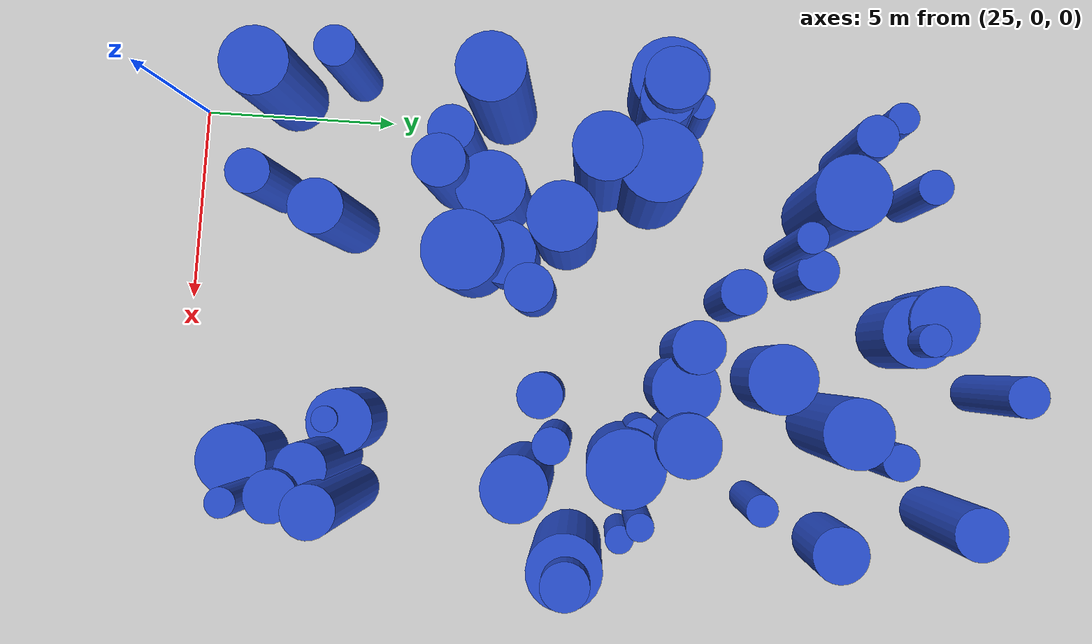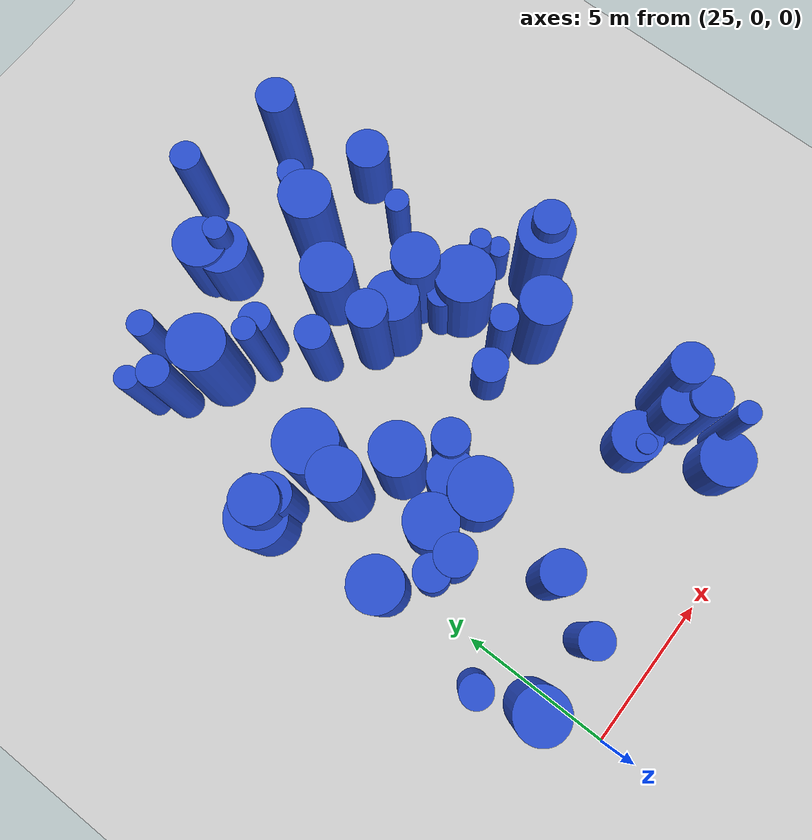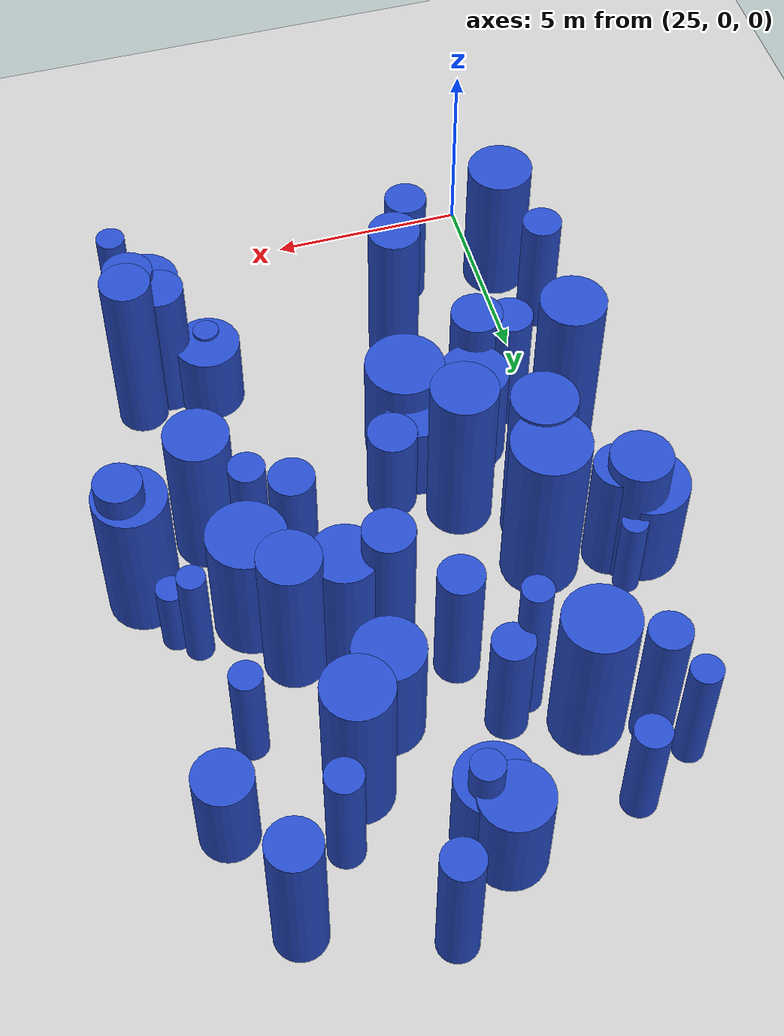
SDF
<sdf version="1.6">
 <world name="default">
  <model name="ground_plane">
   <static>1</static>
   <link name="link">
    <collision name="collision">
     <geometry><plane><normal>0 0 1</normal><size>100 100</size></plane></geometry>
     <surface><friction><ode><mu>100</mu><mu2>50</mu2></ode></friction></surface>
    </collision>
    <visual name="visual">
     <cast_shadows>0</cast_shadows>
     <geometry><plane><normal>0 0 1</normal><size>100 100</size></plane></geometry>
     <material>
      <script><uri>file://media/materials/scripts/gazebo.material</uri><name>Gazebo/Grey</name></script>
     </material>
    </visual>
   </link>
  </model>
  <model name="34">
   <static>0</static>
   <link name="link">
    <inertial>
     <mass>2</mass>
     <inertia><ixx>2.04762</ixx><ixy>0</ixy><ixz>0</ixz><iyy>2.04762</iyy><iyz>0</iyz><izz>0.252697</izz></inertia>
    </inertial>
    <collision name="collision">
     <geometry><cylinder><length>3.39524</length><radius>0.502689</radius></cylinder></geometry>
     <surface><contact><collide_without_contact>1</collide_without_contact></contact></surface>
    </collision>
    <visual name="visual">
     <geometry><cylinder><length>3.39524</length><radius>0.502689</radius></cylinder></geometry>
     <material>
      <script><uri>file://media/materials/scripts/gazebo.material</uri><name>Gazebo/Blue</name></script>
     </material>
    </visual>
    <gravity>0</gravity>
   </link>
   <pose>28.5365 15.9625 1.69762 0 -0 0</pose>
  </model>
  <model name="50">
   <static>0</static>
   <link name="link">
    <inertial>
     <mass>2</mass>
     <inertia><ixx>2.06213</ixx><ixy>0</ixy><ixz>0</ixz><iyy>2.06213</iyy><iyz>0</iyz><izz>0.143933</izz></inertia>
    </inertial>
    <collision name="collision">
     <geometry><cylinder><length>3.45558</length><radius>0.379384</radius></cylinder></geometry>
     <surface><contact><collide_without_contact>1</collide_without_contact></contact></surface>
    </collision>
    <visual name="visual">
     <geometry><cylinder><length>3.45558</length><radius>0.379384</radius></cylinder></geometry>
     <material>
      <script><uri>file://media/materials/scripts/gazebo.material</uri><name>Gazebo/Blue</name></script>
     </material>
    </visual>
    <gravity>0</gravity>
   </link>
   <pose>24.7799 17.7722 1.72779 0 -0 0</pose>
  </model>
  <model name="51">
   <static>0</static>
   <link name="link">
    <inertial>
     <mass>2</mass>
     <inertia><ixx>2.12546</ixx><ixy>0</ixy><ixz>0</ixz><iyy>2.12546</iyy><iyz>0</iyz><izz>0.256393</izz></inertia>
    </inertial>
    <collision name="collision">
     <geometry><cylinder><length>3.46173</length><radius>0.506353</radius></cylinder></geometry>
     <surface><contact><collide_without_contact>1</collide_without_contact></contact></surface>
    </collision>
    <visual name="visual">
     <geometry><cylinder><length>3.46173</length><radius>0.506353</radius></cylinder></geometry>
     <material>
      <script><uri>file://media/materials/scripts/gazebo.material</uri><name>Gazebo/Blue</name></script>
     </material>
    </visual>
    <gravity>0</gravity>
   </link>
   <pose>23.9364 4.12695 1.73086 0 -0 0</pose>
  </model>
  <model name="53">
   <static>0</static>
   <link name="link">
    <inertial>
     <mass>2</mass>
     <inertia><ixx>2.76585</ixx><ixy>0</ixy><ixz>0</ixz><iyy>2.76585</iyy><iyz>0</iyz><izz>0.237555</izz></inertia>
    </inertial>
    <collision name="collision">
     <geometry><cylinder><length>3.98528</length><radius>0.487396</radius></cylinder></geometry>
     <surface><contact><collide_without_contact>1</collide_without_contact></contact></surface>
    </collision>
    <visual name="visual">
     <geometry><cylinder><length>3.98528</length><radius>0.487396</radius></cylinder></geometry>
     <material>
      <script><uri>file://media/materials/scripts/gazebo.material</uri><name>Gazebo/Blue</name></script>
     </material>
    </visual>
    <gravity>0</gravity>
   </link>
   <pose>31.1916 20.8429 1.99264 0 -0 0</pose>
  </model>
  <model name="65">
   <static>0</static>
   <link name="link">
    <inertial>
     <mass>2</mass>
     <inertia><ixx>4.10178</ixx><ixy>0</ixy><ixz>0</ixz><iyy>4.10178</iyy><iyz>0</iyz><izz>0.667926</izz></inertia>
    </inertial>
    <collision name="collision">
     <geometry><cylinder><length>4.75467</length><radius>0.817267</radius></cylinder></geometry>
     <surface><contact><collide_without_contact>1</collide_without_contact></contact></surface>
    </collision>
    <visual name="visual">
     <geometry><cylinder><length>4.75467</length><radius>0.817267</radius></cylinder></geometry>
     <material>
      <script><uri>file://media/materials/scripts/gazebo.material</uri><name>Gazebo/Blue</name></script>
     </material>
    </visual>
    <gravity>0</gravity>
   </link>
   <pose>24.5379 8.02641 2.37734 0 -0 0</pose>
  </model>
  <model name="73">
   <static>0</static>
   <link name="link">
    <inertial>
     <mass>2</mass>
     <inertia><ixx>3.29793</ixx><ixy>0</ixy><ixz>0</ixz><iyy>3.29793</iyy><iyz>0</iyz><izz>0.382412</izz></inertia>
    </inertial>
    <collision name="collision">
     <geometry><cylinder><length>4.31745</length><radius>0.618395</radius></cylinder></geometry>
     <surface><contact><collide_without_contact>1</collide_without_contact></contact></surface>
    </collision>
    <visual name="visual">
     <geometry><cylinder><length>4.31745</length><radius>0.618395</radius></cylinder></geometry>
     <material>
      <script><uri>file://media/materials/scripts/gazebo.material</uri><name>Gazebo/Blue</name></script>
     </material>
    </visual>
    <gravity>0</gravity>
   </link>
   <pose>34.3582 19.7886 2.15872 0 -0 0</pose>
  </model>
  <model name="82">
   <static>0</static>
   <link name="link">
    <inertial>
     <mass>2</mass>
     <inertia><ixx>3.25795</ixx><ixy>0</ixy><ixz>0</ixz><iyy>3.25795</iyy><iyz>0</iyz><izz>0.785089</izz></inertia>
    </inertial>
    <collision name="collision">
     <geometry><cylinder><length>4.14638</length><radius>0.886053</radius></cylinder></geometry>
     <surface><contact><collide_without_contact>1</collide_without_contact></contact></surface>
    </collision>
    <visual name="visual">
     <geometry><cylinder><length>4.14638</length><radius>0.886053</radius></cylinder></geometry>
     <material>
      <script><uri>file://media/materials/scripts/gazebo.material</uri><name>Gazebo/Blue</name></script>
     </material>
    </visual>
    <gravity>0</gravity>
   </link>
   <pose>35.8503 10.436 2.07319 0 -0 0</pose>
  </model>
  <model name="119">
   <static>0</static>
   <link name="link">
    <inertial>
     <mass>2</mass>
     <inertia><ixx>2.67789</ixx><ixy>0</ixy><ixz>0</ixz><iyy>2.67789</iyy><iyz>0</iyz><izz>0.655818</izz></inertia>
    </inertial>
    <collision name="collision">
     <geometry><cylinder><length>3.75498</length><radius>0.809826</radius></cylinder></geometry>
     <surface><contact><collide_without_contact>1</collide_without_contact></contact></surface>
    </collision>
    <visual name="visual">
     <geometry><cylinder><length>3.75498</length><radius>0.809826</radius></cylinder></geometry>
     <material>
      <script><uri>file://media/materials/scripts/gazebo.material</uri><name>Gazebo/Blue</name></script>
     </material>
    </visual>
    <gravity>0</gravity>
   </link>
   <pose>31.524 12.9787 1.87749 0 -0 0</pose>
  </model>
  <model name="120">
   <static>0</static>
   <link name="link">
    <inertial>
     <mass>2</mass>
     <inertia><ixx>1.21863</ixx><ixy>0</ixy><ixz>0</ixz><iyy>1.21863</iyy><iyz>0</iyz><izz>0.648176</izz></inertia>
    </inertial>
    <collision name="collision">
     <geometry><cylinder><length>2.31674</length><radius>0.805094</radius></cylinder></geometry>
     <surface><contact><collide_without_contact>1</collide_without_contact></contact></surface>
    </collision>
    <visual name="visual">
     <geometry><cylinder><length>2.31674</length><radius>0.805094</radius></cylinder></geometry>
     <material>
      <script><uri>file://media/materials/scripts/gazebo.material</uri><name>Gazebo/Blue</name></script>
     </material>
    </visual>
    <gravity>0</gravity>
   </link>
   <pose>28.4753 8.40492 1.15837 0 -0 0</pose>
  </model>
  <model name="122">
   <static>0</static>
   <link name="link">
    <inertial>
     <mass>2</mass>
     <inertia><ixx>3.26531</ixx><ixy>0</ixy><ixz>0</ixz><iyy>3.26531</iyy><iyz>0</iyz><izz>0.4271</izz></inertia>
    </inertial>
    <collision name="collision">
     <geometry><cylinder><length>4.27909</length><radius>0.653529</radius></cylinder></geometry>
     <surface><contact><collide_without_contact>1</collide_without_contact></contact></surface>
    </collision>
    <visual name="visual">
     <geometry><cylinder><length>4.27909</length><radius>0.653529</radius></cylinder></geometry>
     <material>
      <script><uri>file://media/materials/scripts/gazebo.material</uri><name>Gazebo/Blue</name></script>
     </material>
    </visual>
    <gravity>0</gravity>
   </link>
   <pose>27.9079 4.18189 2.13954 0 -0 0</pose>
  </model>
  <model name="124">
   <static>0</static>
   <link name="link">
    <inertial>
     <mass>2</mass>
     <inertia><ixx>3.28363</ixx><ixy>0</ixy><ixz>0</ixz><iyy>3.28363</iyy><iyz>0</iyz><izz>0.618436</izz></inertia>
    </inertial>
    <collision name="collision">
     <geometry><cylinder><length>4.22451</length><radius>0.786407</radius></cylinder></geometry>
     <surface><contact><collide_without_contact>1</collide_without_contact></contact></surface>
    </collision>
    <visual name="visual">
     <geometry><cylinder><length>4.22451</length><radius>0.786407</radius></cylinder></geometry>
     <material>
      <script><uri>file://media/materials/scripts/gazebo.material</uri><name>Gazebo/Blue</name></script>
     </material>
    </visual>
    <gravity>0</gravity>
   </link>
   <pose>34.0434 9.17601 2.11225 0 -0 0</pose>
  </model>
  <model name="130">
   <static>0</static>
   <link name="link">
    <inertial>
     <mass>2</mass>
     <inertia><ixx>2.42182</ixx><ixy>0</ixy><ixz>0</ixz><iyy>2.42182</iyy><iyz>0</iyz><izz>0.418828</izz></inertia>
    </inertial>
    <collision name="collision">
     <geometry><cylinder><length>3.64341</length><radius>0.647169</radius></cylinder></geometry>
     <surface><contact><collide_without_contact>1</collide_without_contact></contact></surface>
    </collision>
    <visual name="visual">
     <geometry><cylinder><length>3.64341</length><radius>0.647169</radius></cylinder></geometry>
     <material>
      <script><uri>file://media/materials/scripts/gazebo.material</uri><name>Gazebo/Blue</name></script>
     </material>
    </visual>
    <gravity>0</gravity>
   </link>
   <pose>26.5421 6.83229 1.82171 0 -0 0</pose>
  </model>
  <model name="132">
   <static>0</static>
   <link name="link">
    <inertial>
     <mass>2</mass>
     <inertia><ixx>1.34527</ixx><ixy>0</ixy><ixz>0</ixz><iyy>1.34527</iyy><iyz>0</iyz><izz>0.376223</izz></inertia>
    </inertial>
    <collision name="collision">
     <geometry><cylinder><length>2.63495</length><radius>0.613371</radius></cylinder></geometry>
     <surface><contact><collide_without_contact>1</collide_without_contact></contact></surface>
    </collision>
    <visual name="visual">
     <geometry><cylinder><length>2.63495</length><radius>0.613371</radius></cylinder></geometry>
     <material>
      <script><uri>file://media/materials/scripts/gazebo.material</uri><name>Gazebo/Blue</name></script>
     </material>
    </visual>
    <gravity>0</gravity>
   </link>
   <pose>29.3354 9.09993 1.31747 0 -0 0</pose>
  </model>
  <model name="133">
   <static>0</static>
   <link name="link">
    <inertial>
     <mass>2</mass>
     <inertia><ixx>2.03008</ixx><ixy>0</ixy><ixz>0</ixz><iyy>2.03008</iyy><iyz>0</iyz><izz>0.9733</izz></inertia>
    </inertial>
    <collision name="collision">
     <geometry><cylinder><length>3.04312</length><radius>0.98656</radius></cylinder></geometry>
     <surface><contact><collide_without_contact>1</collide_without_contact></contact></surface>
    </collision>
    <visual name="visual">
     <geometry><cylinder><length>3.04312</length><radius>0.98656</radius></cylinder></geometry>
     <material>
      <script><uri>file://media/materials/scripts/gazebo.material</uri><name>Gazebo/Blue</name></script>
     </material>
    </visual>
    <gravity>0</gravity>
   </link>
   <pose>28.5566 7.43766 1.52156 0 -0 0</pose>
  </model>
  <model name="147">
   <static>0</static>
   <link name="link">
    <inertial>
     <mass>2</mass>
     <inertia>
      <ixx>0.824184</ixx>
      <ixy>0</ixy>
      <ixz>0</ixz>
      <iyy>0.824184</iyy>
      <iyz>0</iyz>
      <izz>0.109364</izz>
     </inertia>
    </inertial>
    <collision name="collision">
     <geometry><cylinder><length>2.14872</length><radius>0.330702</radius></cylinder></geometry>
     <surface><contact><collide_without_contact>1</collide_without_contact></contact></surface>
    </collision>
    <visual name="visual">
     <geometry><cylinder><length>2.14872</length><radius>0.330702</radius></cylinder></geometry>
     <material>
      <script><uri>file://media/materials/scripts/gazebo.material</uri><name>Gazebo/Blue</name></script>
     </material>
    </visual>
    <gravity>0</gravity>
   </link>
   <pose>32.8903 4.2564 1.07436 0 -0 0</pose>
  </model>
  <model name="149">
   <static>0</static>
   <link name="link">
    <inertial>
     <mass>2</mass>
     <inertia><ixx>2.1817</ixx><ixy>0</ixy><ixz>0</ixz><iyy>2.1817</iyy><iyz>0</iyz><izz>0.152978</izz></inertia>
    </inertial>
    <collision name="collision">
     <geometry><cylinder><length>3.55405</length><radius>0.391123</radius></cylinder></geometry>
     <surface><contact><collide_without_contact>1</collide_without_contact></contact></surface>
    </collision>
    <visual name="visual">
     <geometry><cylinder><length>3.55405</length><radius>0.391123</radius></cylinder></geometry>
     <material>
      <script><uri>file://media/materials/scripts/gazebo.material</uri><name>Gazebo/Blue</name></script>
     </material>
    </visual>
    <gravity>0</gravity>
   </link>
   <pose>30.0083 18.7554 1.77703 0 -0 0</pose>
  </model>
  <model name="163">
   <static>0</static>
   <link name="link">
    <inertial>
     <mass>2</mass>
     <inertia><ixx>3.981</ixx><ixy>0</ixy><ixz>0</ixz><iyy>3.981</iyy><iyz>0</iyz><izz>0.664565</izz></inertia>
    </inertial>
    <collision name="collision">
     <geometry><cylinder><length>4.67892</length><radius>0.815208</radius></cylinder></geometry>
     <surface><contact><collide_without_contact>1</collide_without_contact></contact></surface>
    </collision>
    <visual name="visual">
     <geometry><cylinder><length>4.67892</length><radius>0.815208</radius></cylinder></geometry>
     <material>
      <script><uri>file://media/materials/scripts/gazebo.material</uri><name>Gazebo/Blue</name></script>
     </material>
    </visual>
    <gravity>0</gravity>
   </link>
   <pose>27.8156 9.86092 2.33946 0 -0 0</pose>
  </model>
  <model name="165">
   <static>0</static>
   <link name="link">
    <inertial>
     <mass>2</mass>
     <inertia><ixx>2.28797</ixx><ixy>0</ixy><ixz>0</ixz><iyy>2.28797</iyy><iyz>0</iyz><izz>0.431575</izz></inertia>
    </inertial>
    <collision name="collision">
     <geometry><cylinder><length>3.52606</length><radius>0.656943</radius></cylinder></geometry>
     <surface><contact><collide_without_contact>1</collide_without_contact></contact></surface>
    </collision>
    <visual name="visual">
     <geometry><cylinder><length>3.52606</length><radius>0.656943</radius></cylinder></geometry>
     <material>
      <script><uri>file://media/materials/scripts/gazebo.material</uri><name>Gazebo/Blue</name></script>
     </material>
    </visual>
    <gravity>0</gravity>
   </link>
   <pose>24.6912 12.1351 1.76303 0 -0 0</pose>
  </model>
  <model name="172">
   <static>0</static>
   <link name="link">
    <inertial>
     <mass>2</mass>
     <inertia><ixx>1.41095</ixx><ixy>0</ixy><ixz>0</ixz><iyy>1.41095</iyy><iyz>0</iyz><izz>0.489135</izz></inertia>
    </inertial>
    <collision name="collision">
     <geometry><cylinder><length>2.64543</length><radius>0.699382</radius></cylinder></geometry>
     <surface><contact><collide_without_contact>1</collide_without_contact></contact></surface>
    </collision>
    <visual name="visual">
     <geometry><cylinder><length>2.64543</length><radius>0.699382</radius></cylinder></geometry>
     <material>
      <script><uri>file://media/materials/scripts/gazebo.material</uri><name>Gazebo/Blue</name></script>
     </material>
    </visual>
    <gravity>0</gravity>
   </link>
   <pose>35.2961 17.0627 1.32271 0 -0 0</pose>
  </model>
  <model name="180">
   <static>0</static>
   <link name="link">
    <inertial>
     <mass>2</mass>
     <inertia><ixx>2.26067</ixx><ixy>0</ixy><ixz>0</ixz><iyy>2.26067</iyy><iyz>0</iyz><izz>0.199813</izz></inertia>
    </inertial>
    <collision name="collision">
     <geometry><cylinder><length>3.60063</length><radius>0.447005</radius></cylinder></geometry>
     <surface><contact><collide_without_contact>1</collide_without_contact></contact></surface>
    </collision>
    <visual name="visual">
     <geometry><cylinder><length>3.60063</length><radius>0.447005</radius></cylinder></geometry>
     <material>
      <script><uri>file://media/materials/scripts/gazebo.material</uri><name>Gazebo/Blue</name></script>
     </material>
    </visual>
    <gravity>0</gravity>
   </link>
   <pose>33.0643 9.92457 1.80032 0 -0 0</pose>
  </model>
  <model name="187">
   <static>0</static>
   <link name="link">
    <inertial>
     <mass>2</mass>
     <inertia><ixx>1.08859</ixx><ixy>0</ixy><ixz>0</ixz><iyy>1.08859</iyy><iyz>0</iyz><izz>0.332545</izz></inertia>
    </inertial>
    <collision name="collision">
     <geometry><cylinder><length>2.35242</length><radius>0.576667</radius></cylinder></geometry>
     <surface><contact><collide_without_contact>1</collide_without_contact></contact></surface>
    </collision>
    <visual name="visual">
     <geometry><cylinder><length>2.35242</length><radius>0.576667</radius></cylinder></geometry>
     <material>
      <script><uri>file://media/materials/scripts/gazebo.material</uri><name>Gazebo/Blue</name></script>
     </material>
    </visual>
    <gravity>0</gravity>
   </link>
   <pose>31.9469 9.53714 1.17621 0 -0 0</pose>
  </model>
  <model name="188">
   <static>0</static>
   <link name="link">
    <inertial>
     <mass>2</mass>
     <inertia><ixx>2.92046</ixx><ixy>0</ixy><ixz>0</ixz><iyy>2.92046</iyy><iyz>0</iyz><izz>0.252098</izz></inertia>
    </inertial>
    <collision name="collision">
     <geometry><cylinder><length>4.09469</length><radius>0.502093</radius></cylinder></geometry>
     <surface><contact><collide_without_contact>1</collide_without_contact></contact></surface>
    </collision>
    <visual name="visual">
     <geometry><cylinder><length>4.09469</length><radius>0.502093</radius></cylinder></geometry>
     <material>
      <script><uri>file://media/materials/scripts/gazebo.material</uri><name>Gazebo/Blue</name></script>
     </material>
    </visual>
    <gravity>0</gravity>
   </link>
   <pose>25.3993 17.0112 2.04734 0 -0 0</pose>
  </model>
  <model name="192">
   <static>0</static>
   <link name="link">
    <inertial>
     <mass>2</mass>
     <inertia><ixx>3.57441</ixx><ixy>0</ixy><ixz>0</ixz><iyy>3.57441</iyy><iyz>0</iyz><izz>0.380893</izz></inertia>
    </inertial>
    <collision name="collision">
     <geometry><cylinder><length>4.50597</length><radius>0.617166</radius></cylinder></geometry>
     <surface><contact><collide_without_contact>1</collide_without_contact></contact></surface>
    </collision>
    <visual name="visual">
     <geometry><cylinder><length>4.50597</length><radius>0.617166</radius></cylinder></geometry>
     <material>
      <script><uri>file://media/materials/scripts/gazebo.material</uri><name>Gazebo/Blue</name></script>
     </material>
    </visual>
    <gravity>0</gravity>
   </link>
   <pose>30.5597 13.1513 2.25299 0 -0 0</pose>
  </model>
  <model name="195">
   <static>0</static>
   <link name="link">
    <inertial>
     <mass>2</mass>
     <inertia><ixx>3.58815</ixx><ixy>0</ixy><ixz>0</ixz><iyy>3.58815</iyy><iyz>0</iyz><izz>0.135348</izz></inertia>
    </inertial>
    <collision name="collision">
     <geometry><cylinder><length>4.59596</length><radius>0.367897</radius></cylinder></geometry>
     <surface><contact><collide_without_contact>1</collide_without_contact></contact></surface>
    </collision>
    <visual name="visual">
     <geometry><cylinder><length>4.59596</length><radius>0.367897</radius></cylinder></geometry>
     <material>
      <script><uri>file://media/materials/scripts/gazebo.material</uri><name>Gazebo/Blue</name></script>
     </material>
    </visual>
    <gravity>0</gravity>
   </link>
   <pose>27.9233 15.5456 2.29798 0 -0 0</pose>
  </model>
  <model name="223">
   <static>0</static>
   <link name="link">
    <inertial>
     <mass>2</mass>
     <inertia><ixx>0.79333</ixx><ixy>0</ixy><ixz>0</ixz><iyy>0.79333</iyy><iyz>0</iyz><izz>0.125248</izz></inertia>
    </inertial>
    <collision name="collision">
     <geometry><cylinder><length>2.09386</length><radius>0.353905</radius></cylinder></geometry>
     <surface><contact><collide_without_contact>1</collide_without_contact></contact></surface>
    </collision>
    <visual name="visual">
     <geometry><cylinder><length>2.09386</length><radius>0.353905</radius></cylinder></geometry>
     <material>
      <script><uri>file://media/materials/scripts/gazebo.material</uri><name>Gazebo/Blue</name></script>
     </material>
    </visual>
    <gravity>0</gravity>
   </link>
   <pose>35.3536 11.7215 1.04693 0 -0 0</pose>
  </model>
  <model name="233">
   <static>0</static>
   <link name="link">
    <inertial>
     <mass>2</mass>
     <inertia>
      <ixx>2.99615</ixx>
      <ixy>0</ixy>
      <ixz>0</ixz>
      <iyy>2.99615</iyy>
      <iyz>0</iyz>
      <izz>0.0662204</izz>
     </inertia>
    </inertial>
    <collision name="collision">
     <geometry><cylinder><length>4.21642</length><radius>0.257333</radius></cylinder></geometry>
     <surface><contact><collide_without_contact>1</collide_without_contact></contact></surface>
    </collision>
    <visual name="visual">
     <geometry><cylinder><length>4.21642</length><radius>0.257333</radius></cylinder></geometry>
     <material>
      <script><uri>file://media/materials/scripts/gazebo.material</uri><name>Gazebo/Blue</name></script>
     </material>
    </visual>
    <gravity>0</gravity>
   </link>
   <pose>30.4978 13.0604 2.10821 0 -0 0</pose>
  </model>
  <model name="257">
   <static>0</static>
   <link name="link">
    <inertial>
     <mass>2</mass>
     <inertia><ixx>1.73149</ixx><ixy>0</ixy><ixz>0</ixz><iyy>1.73149</iyy><iyz>0</iyz><izz>0.183637</izz></inertia>
    </inertial>
    <collision name="collision">
     <geometry><cylinder><length>3.13656</length><radius>0.428529</radius></cylinder></geometry>
     <surface><contact><collide_without_contact>1</collide_without_contact></contact></surface>
    </collision>
    <visual name="visual">
     <geometry><cylinder><length>3.13656</length><radius>0.428529</radius></cylinder></geometry>
     <material>
      <script><uri>file://media/materials/scripts/gazebo.material</uri><name>Gazebo/Blue</name></script>
     </material>
    </visual>
    <gravity>0</gravity>
   </link>
   <pose>26.3208 18.7257 1.56828 0 -0 0</pose>
  </model>
  <model name="270">
   <static>0</static>
   <link name="link">
    <inertial>
     <mass>2</mass>
     <inertia><ixx>2.89658</ixx><ixy>0</ixy><ixz>0</ixz><iyy>2.89658</iyy><iyz>0</iyz><izz>0.695358</izz></inertia>
    </inertial>
    <collision name="collision">
     <geometry><cylinder><length>3.91068</length><radius>0.833881</radius></cylinder></geometry>
     <surface><contact><collide_without_contact>1</collide_without_contact></contact></surface>
    </collision>
    <visual name="visual">
     <geometry><cylinder><length>3.91068</length><radius>0.833881</radius></cylinder></geometry>
     <material>
      <script><uri>file://media/materials/scripts/gazebo.material</uri><name>Gazebo/Blue</name></script>
     </material>
    </visual>
    <gravity>0</gravity>
   </link>
   <pose>24.5352 2.37473 1.95534 0 -0 0</pose>
  </model>
  <model name="272">
   <static>0</static>
   <link name="link">
    <inertial>
     <mass>2</mass>
     <inertia><ixx>3.55205</ixx><ixy>0</ixy><ixz>0</ixz><iyy>3.55205</iyy><iyz>0</iyz><izz>0.797344</izz></inertia>
    </inertial>
    <collision name="collision">
     <geometry><cylinder><length>4.34975</length><radius>0.892941</radius></cylinder></geometry>
     <surface><contact><collide_without_contact>1</collide_without_contact></contact></surface>
    </collision>
    <visual name="visual">
     <geometry><cylinder><length>4.34975</length><radius>0.892941</radius></cylinder></geometry>
     <material>
      <script><uri>file://media/materials/scripts/gazebo.material</uri><name>Gazebo/Blue</name></script>
     </material>
    </visual>
    <gravity>0</gravity>
   </link>
   <pose>26.7877 16.4771 2.17487 0 -0 0</pose>
  </model>
  <model name="273">
   <static>0</static>
   <link name="link">
    <inertial>
     <mass>2</mass>
     <inertia><ixx>1.79035</ixx><ixy>0</ixy><ixz>0</ixz><iyy>1.79035</iyy><iyz>0</iyz><izz>0.746025</izz></inertia>
    </inertial>
    <collision name="collision">
     <geometry><cylinder><length>2.91617</length><radius>0.863727</radius></cylinder></geometry>
     <surface><contact><collide_without_contact>1</collide_without_contact></contact></surface>
    </collision>
    <visual name="visual">
     <geometry><cylinder><length>2.91617</length><radius>0.863727</radius></cylinder></geometry>
     <material>
      <script><uri>file://media/materials/scripts/gazebo.material</uri><name>Gazebo/Blue</name></script>
     </material>
    </visual>
    <gravity>0</gravity>
   </link>
   <pose>26.9452 8.01745 1.45808 0 -0 0</pose>
  </model>
  <model name="276">
   <static>0</static>
   <link name="link">
    <inertial>
     <mass>2</mass>
     <inertia><ixx>3.96467</ixx><ixy>0</ixy><ixz>0</ixz><iyy>3.96467</iyy><iyz>0</iyz><izz>0.320346</izz></inertia>
    </inertial>
    <collision name="collision">
     <geometry><cylinder><length>4.77776</length><radius>0.565991</radius></cylinder></geometry>
     <surface><contact><collide_without_contact>1</collide_without_contact></contact></surface>
    </collision>
    <visual name="visual">
     <geometry><cylinder><length>4.77776</length><radius>0.565991</radius></cylinder></geometry>
     <material>
      <script><uri>file://media/materials/scripts/gazebo.material</uri><name>Gazebo/Blue</name></script>
     </material>
    </visual>
    <gravity>0</gravity>
   </link>
   <pose>36.0499 10.4808 2.38888 0 -0 0</pose>
  </model>
  <model name="293">
   <static>0</static>
   <link name="link">
    <inertial>
     <mass>2</mass>
     <inertia><ixx>3.30192</ixx><ixy>0</ixy><ixz>0</ixz><iyy>3.30192</iyy><iyz>0</iyz><izz>0.565741</izz></inertia>
    </inertial>
    <collision name="collision">
     <geometry><cylinder><length>4.25609</length><radius>0.752157</radius></cylinder></geometry>
     <surface><contact><collide_without_contact>1</collide_without_contact></contact></surface>
    </collision>
    <visual name="visual">
     <geometry><cylinder><length>4.25609</length><radius>0.752157</radius></cylinder></geometry>
     <material>
      <script><uri>file://media/materials/scripts/gazebo.material</uri><name>Gazebo/Blue</name></script>
     </material>
    </visual>
    <gravity>0</gravity>
   </link>
   <pose>32.809 13.089 2.12804 0 -0 0</pose>
  </model>
  <model name="296">
   <static>0</static>
   <link name="link">
    <inertial>
     <mass>2</mass>
     <inertia><ixx>4.26118</ixx><ixy>0</ixy><ixz>0</ixz><iyy>4.26118</iyy><iyz>0</iyz><izz>0.636812</izz></inertia>
    </inertial>
    <collision name="collision">
     <geometry><cylinder><length>4.86381</length><radius>0.798005</radius></cylinder></geometry>
     <surface><contact><collide_without_contact>1</collide_without_contact></contact></surface>
    </collision>
    <visual name="visual">
     <geometry><cylinder><length>4.86381</length><radius>0.798005</radius></cylinder></geometry>
     <material>
      <script><uri>file://media/materials/scripts/gazebo.material</uri><name>Gazebo/Blue</name></script>
     </material>
    </visual>
    <gravity>0</gravity>
   </link>
   <pose>26.1952 10.7788 2.43191 0 -0 0</pose>
  </model>
  <model name="298">
   <static>0</static>
   <link name="link">
    <inertial>
     <mass>2</mass>
     <inertia><ixx>4.27276</ixx><ixy>0</ixy><ixz>0</ixz><iyy>4.27276</iyy><iyz>0</iyz><izz>0.912614</izz></inertia>
    </inertial>
    <collision name="collision">
     <geometry><cylinder><length>4.78526</length><radius>0.955308</radius></cylinder></geometry>
     <surface><contact><collide_without_contact>1</collide_without_contact></contact></surface>
    </collision>
    <visual name="visual">
     <geometry><cylinder><length>4.78526</length><radius>0.955308</radius></cylinder></geometry>
     <material>
      <script><uri>file://media/materials/scripts/gazebo.material</uri><name>Gazebo/Blue</name></script>
     </material>
    </visual>
    <gravity>0</gravity>
   </link>
   <pose>26.4308 11.9914 2.39263 0 -0 0</pose>
  </model>
  <model name="331">
   <static>0</static>
   <link name="link">
    <inertial>
     <mass>2</mass>
     <inertia><ixx>1.00151</ixx><ixy>0</ixy><ixz>0</ixz><iyy>1.00151</iyy><iyz>0</iyz><izz>0.165224</izz></inertia>
    </inertial>
    <collision name="collision">
     <geometry><cylinder><length>2.34806</length><radius>0.406478</radius></cylinder></geometry>
     <surface><contact><collide_without_contact>1</collide_without_contact></contact></surface>
    </collision>
    <visual name="visual">
     <geometry><cylinder><length>2.34806</length><radius>0.406478</radius></cylinder></geometry>
     <material>
      <script><uri>file://media/materials/scripts/gazebo.material</uri><name>Gazebo/Blue</name></script>
     </material>
    </visual>
    <gravity>0</gravity>
   </link>
   <pose>32.475 16.5359 1.17403 0 -0 0</pose>
  </model>
  <model name="345">
   <static>0</static>
   <link name="link">
    <inertial>
     <mass>2</mass>
     <inertia><ixx>1.10501</ixx><ixy>0</ixy><ixz>0</ixz><iyy>1.10501</iyy><iyz>0</iyz><izz>0.790472</izz></inertia>
    </inertial>
    <collision name="collision">
     <geometry><cylinder><length>2.06364</length><radius>0.889085</radius></cylinder></geometry>
     <surface><contact><collide_without_contact>1</collide_without_contact></contact></surface>
    </collision>
    <visual name="visual">
     <geometry><cylinder><length>2.06364</length><radius>0.889085</radius></cylinder></geometry>
     <material>
      <script><uri>file://media/materials/scripts/gazebo.material</uri><name>Gazebo/Blue</name></script>
     </material>
    </visual>
    <gravity>0</gravity>
   </link>
   <pose>34.0422 2.0066 1.03182 0 -0 0</pose>
  </model>
  <model name="349">
   <static>0</static>
   <link name="link">
    <inertial>
     <mass>2</mass>
     <inertia><ixx>4.25693</ixx><ixy>0</ixy><ixz>0</ixz><iyy>4.25693</iyy><iyz>0</iyz><izz>0.39173</izz></inertia>
    </inertial>
    <collision name="collision">
     <geometry><cylinder><length>4.93623</length><radius>0.625883</radius></cylinder></geometry>
     <surface><contact><collide_without_contact>1</collide_without_contact></contact></surface>
    </collision>
    <visual name="visual">
     <geometry><cylinder><length>4.93623</length><radius>0.625883</radius></cylinder></geometry>
     <material>
      <script><uri>file://media/materials/scripts/gazebo.material</uri><name>Gazebo/Blue</name></script>
     </material>
    </visual>
    <gravity>0</gravity>
   </link>
   <pose>34.7694 4.71738 2.46811 0 -0 0</pose>
  </model>
  <model name="353">
   <static>0</static>
   <link name="link">
    <inertial>
     <mass>2</mass>
     <inertia><ixx>2.02847</ixx><ixy>0</ixy><ixz>0</ixz><iyy>2.02847</iyy><iyz>0</iyz><izz>0.29673</izz></inertia>
    </inertial>
    <collision name="collision">
     <geometry><cylinder><length>3.35867</length><radius>0.54473</radius></cylinder></geometry>
     <surface><contact><collide_without_contact>1</collide_without_contact></contact></surface>
    </collision>
    <visual name="visual">
     <geometry><cylinder><length>3.35867</length><radius>0.54473</radius></cylinder></geometry>
     <material>
      <script><uri>file://media/materials/scripts/gazebo.material</uri><name>Gazebo/Blue</name></script>
     </material>
    </visual>
    <gravity>0</gravity>
   </link>
   <pose>27.0564 2.25899 1.67933 0 -0 0</pose>
  </model>
  <model name="364">
   <static>0</static>
   <link name="link">
    <inertial>
     <mass>2</mass>
     <inertia><ixx>2.52372</ixx><ixy>0</ixy><ixz>0</ixz><iyy>2.52372</iyy><iyz>0</iyz><izz>0.905317</izz></inertia>
    </inertial>
    <collision name="collision">
     <geometry><cylinder><length>3.5251</length><radius>0.951481</radius></cylinder></geometry>
     <surface><contact><collide_without_contact>1</collide_without_contact></contact></surface>
    </collision>
    <visual name="visual">
     <geometry><cylinder><length>3.5251</length><radius>0.951481</radius></cylinder></geometry>
     <material>
      <script><uri>file://media/materials/scripts/gazebo.material</uri><name>Gazebo/Blue</name></script>
     </material>
    </visual>
    <gravity>0</gravity>
   </link>
   <pose>33.492 11.7256 1.76255 0 -0 0</pose>
  </model>
  <model name="370">
   <static>0</static>
   <link name="link">
    <inertial>
     <mass>2</mass>
     <inertia><ixx>1.71451</ixx><ixy>0</ixy><ixz>0</ixz><iyy>1.71451</iyy><iyz>0</iyz><izz>0.954637</izz></inertia>
    </inertial>
    <collision name="collision">
     <geometry><cylinder><length>2.72454</length><radius>0.977055</radius></cylinder></geometry>
     <surface><contact><collide_without_contact>1</collide_without_contact></contact></surface>
    </collision>
    <visual name="visual">
     <geometry><cylinder><length>2.72454</length><radius>0.977055</radius></cylinder></geometry>
     <material>
      <script><uri>file://media/materials/scripts/gazebo.material</uri><name>Gazebo/Blue</name></script>
     </material>
    </visual>
    <gravity>0</gravity>
   </link>
   <pose>23.9274 12.2198 1.36227 0 -0 0</pose>
  </model>
  <model name="389">
   <static>0</static>
   <link name="link">
    <inertial>
     <mass>2</mass>
     <inertia><ixx>2.31007</ixx><ixy>0</ixy><ixz>0</ixz><iyy>2.31007</iyy><iyz>0</iyz><izz>0.321811</izz></inertia>
    </inertial>
    <collision name="collision">
     <geometry><cylinder><length>3.59096</length><radius>0.567284</radius></cylinder></geometry>
     <surface><contact><collide_without_contact>1</collide_without_contact></contact></surface>
    </collision>
    <visual name="visual">
     <geometry><cylinder><length>3.59096</length><radius>0.567284</radius></cylinder></geometry>
     <material>
      <script><uri>file://media/materials/scripts/gazebo.material</uri><name>Gazebo/Blue</name></script>
     </material>
    </visual>
    <gravity>0</gravity>
   </link>
   <pose>25.7523 7.06469 1.79548 0 -0 0</pose>
  </model>
  <model name="397">
   <static>0</static>
   <link name="link">
    <inertial>
     <mass>2</mass>
     <inertia><ixx>1.6644</ixx><ixy>0</ixy><ixz>0</ixz><iyy>1.6644</iyy><iyz>0</iyz><izz>0.735596</izz></inertia>
    </inertial>
    <collision name="collision">
     <geometry><cylinder><length>2.7892</length><radius>0.857669</radius></cylinder></geometry>
     <surface><contact><collide_without_contact>1</collide_without_contact></contact></surface>
    </collision>
    <visual name="visual">
     <geometry><cylinder><length>2.7892</length><radius>0.857669</radius></cylinder></geometry>
     <material>
      <script><uri>file://media/materials/scripts/gazebo.material</uri><name>Gazebo/Blue</name></script>
     </material>
    </visual>
    <gravity>0</gravity>
   </link>
   <pose>29.4919 19.2151 1.3946 0 -0 0</pose>
  </model>
  <model name="401">
   <static>0</static>
   <link name="link">
    <inertial>
     <mass>2</mass>
     <inertia><ixx>1.64059</ixx><ixy>0</ixy><ixz>0</ixz><iyy>1.64059</iyy><iyz>0</iyz><izz>0.15146</izz></inertia>
    </inertial>
    <collision name="collision">
     <geometry><cylinder><length>3.06417</length><radius>0.389179</radius></cylinder></geometry>
     <surface><contact><collide_without_contact>1</collide_without_contact></contact></surface>
    </collision>
    <visual name="visual">
     <geometry><cylinder><length>3.06417</length><radius>0.389179</radius></cylinder></geometry>
     <material>
      <script><uri>file://media/materials/scripts/gazebo.material</uri><name>Gazebo/Blue</name></script>
     </material>
    </visual>
    <gravity>0</gravity>
   </link>
   <pose>34.2985 15.0276 1.53209 0 -0 0</pose>
  </model>
  <model name="407">
   <static>0</static>
   <link name="link">
    <inertial>
     <mass>2</mass>
     <inertia><ixx>1.54882</ixx><ixy>0</ixy><ixz>0</ixz><iyy>1.54882</iyy><iyz>0</iyz><izz>0.117295</izz></inertia>
    </inertial>
    <collision name="collision">
     <geometry><cylinder><length>2.99016</length><radius>0.342484</radius></cylinder></geometry>
     <surface><contact><collide_without_contact>1</collide_without_contact></contact></surface>
    </collision>
    <visual name="visual">
     <geometry><cylinder><length>2.99016</length><radius>0.342484</radius></cylinder></geometry>
     <material>
      <script><uri>file://media/materials/scripts/gazebo.material</uri><name>Gazebo/Blue</name></script>
     </material>
    </visual>
    <gravity>0</gravity>
   </link>
   <pose>34.8945 12.1573 1.49508 0 -0 0</pose>
  </model>
  <model name="411">
   <static>0</static>
   <link name="link">
    <inertial>
     <mass>2</mass>
     <inertia><ixx>2.82881</ixx><ixy>0</ixy><ixz>0</ixz><iyy>2.82881</iyy><iyz>0</iyz><izz>0.381334</izz></inertia>
    </inertial>
    <collision name="collision">
     <geometry><cylinder><length>3.97855</length><radius>0.617522</radius></cylinder></geometry>
     <surface><contact><collide_without_contact>1</collide_without_contact></contact></surface>
    </collision>
    <visual name="visual">
     <geometry><cylinder><length>3.97855</length><radius>0.617522</radius></cylinder></geometry>
     <material>
      <script><uri>file://media/materials/scripts/gazebo.material</uri><name>Gazebo/Blue</name></script>
     </material>
    </visual>
    <gravity>0</gravity>
   </link>
   <pose>33.9388 4.23149 1.98928 0 -0 0</pose>
  </model>
  <model name="428">
   <static>0</static>
   <link name="link">
    <inertial>
     <mass>2</mass>
     <inertia><ixx>3.14165</ixx><ixy>0</ixy><ixz>0</ixz><iyy>3.14165</iyy><iyz>0</iyz><izz>0.127579</izz></inertia>
    </inertial>
    <collision name="collision">
     <geometry><cylinder><length>4.29734</length><radius>0.357182</radius></cylinder></geometry>
     <surface><contact><collide_without_contact>1</collide_without_contact></contact></surface>
    </collision>
    <visual name="visual">
     <geometry><cylinder><length>4.29734</length><radius>0.357182</radius></cylinder></geometry>
     <material>
      <script><uri>file://media/materials/scripts/gazebo.material</uri><name>Gazebo/Blue</name></script>
     </material>
    </visual>
    <gravity>0</gravity>
   </link>
   <pose>34.7842 2.56307 2.14867 0 -0 0</pose>
  </model>
  <model name="439">
   <static>0</static>
   <link name="link">
    <inertial>
     <mass>2</mass>
     <inertia><ixx>2.44907</ixx><ixy>0</ixy><ixz>0</ixz><iyy>2.44907</iyy><iyz>0</iyz><izz>0.301795</izz></inertia>
    </inertial>
    <collision name="collision">
     <geometry><cylinder><length>3.71336</length><radius>0.549359</radius></cylinder></geometry>
     <surface><contact><collide_without_contact>1</collide_without_contact></contact></surface>
    </collision>
    <visual name="visual">
     <geometry><cylinder><length>3.71336</length><radius>0.549359</radius></cylinder></geometry>
     <material>
      <script><uri>file://media/materials/scripts/gazebo.material</uri><name>Gazebo/Blue</name></script>
     </material>
    </visual>
    <gravity>0</gravity>
   </link>
   <pose>29.1893 14.1878 1.85668 0 -0 0</pose>
  </model>
  <model name="442">
   <static>0</static>
   <link name="link">
    <inertial>
     <mass>2</mass>
     <inertia><ixx>2.08684</ixx><ixy>0</ixy><ixz>0</ixz><iyy>2.08684</iyy><iyz>0</iyz><izz>0.191771</izz></inertia>
    </inertial>
    <collision name="collision">
     <geometry><cylinder><length>3.45626</length><radius>0.437916</radius></cylinder></geometry>
     <surface><contact><collide_without_contact>1</collide_without_contact></contact></surface>
    </collision>
    <visual name="visual">
     <geometry><cylinder><length>3.45626</length><radius>0.437916</radius></cylinder></geometry>
     <material>
      <script><uri>file://media/materials/scripts/gazebo.material</uri><name>Gazebo/Blue</name></script>
     </material>
    </visual>
    <gravity>0</gravity>
   </link>
   <pose>32.9176 18.1507 1.72813 0 -0 0</pose>
  </model>
  <model name="450">
   <static>0</static>
   <link name="link">
    <inertial>
     <mass>2</mass>
     <inertia><ixx>2.11546</ixx><ixy>0</ixy><ixz>0</ixz><iyy>2.11546</iyy><iyz>0</iyz><izz>0.72246</izz></inertia>
    </inertial>
    <collision name="collision">
     <geometry><cylinder><length>3.24428</length><radius>0.849976</radius></cylinder></geometry>
     <surface><contact><collide_without_contact>1</collide_without_contact></contact></surface>
    </collision>
    <visual name="visual">
     <geometry><cylinder><length>3.24428</length><radius>0.849976</radius></cylinder></geometry>
     <material>
      <script><uri>file://media/materials/scripts/gazebo.material</uri><name>Gazebo/Blue</name></script>
     </material>
    </visual>
    <gravity>0</gravity>
   </link>
   <pose>31.1616 15.3175 1.62214 0 -0 0</pose>
  </model>
  <model name="453">
   <static>0</static>
   <link name="link">
    <inertial>
     <mass>2</mass>
     <inertia><ixx>3.82183</ixx><ixy>0</ixy><ixz>0</ixz><iyy>3.82183</iyy><iyz>0</iyz><izz>0.668297</izz></inertia>
    </inertial>
    <collision name="collision">
     <geometry><cylinder><length>4.57451</length><radius>0.817494</radius></cylinder></geometry>
     <surface><contact><collide_without_contact>1</collide_without_contact></contact></surface>
    </collision>
    <visual name="visual">
     <geometry><cylinder><length>4.57451</length><radius>0.817494</radius></cylinder></geometry>
     <material>
      <script><uri>file://media/materials/scripts/gazebo.material</uri><name>Gazebo/Blue</name></script>
     </material>
    </visual>
    <gravity>0</gravity>
   </link>
   <pose>32.264 16.8386 2.28725 0 -0 0</pose>
  </model>
  <model name="472">
   <static>0</static>
   <link name="link">
    <inertial>
     <mass>2</mass>
     <inertia><ixx>2.84847</ixx><ixy>0</ixy><ixz>0</ixz><iyy>2.84847</iyy><iyz>0</iyz><izz>0.567953</izz></inertia>
    </inertial>
    <collision name="collision">
     <geometry><cylinder><length>3.92262</length><radius>0.753626</radius></cylinder></geometry>
     <surface><contact><collide_without_contact>1</collide_without_contact></contact></surface>
    </collision>
    <visual name="visual">
     <geometry><cylinder><length>3.92262</length><radius>0.753626</radius></cylinder></geometry>
     <material>
      <script><uri>file://media/materials/scripts/gazebo.material</uri><name>Gazebo/Blue</name></script>
     </material>
    </visual>
    <gravity>0</gravity>
   </link>
   <pose>24.2896 12.2953 1.96131 0 -0 0</pose>
  </model>
  <model name="477">
   <static>0</static>
   <link name="link">
    <inertial>
     <mass>2</mass>
     <inertia><ixx>1.05709</ixx><ixy>0</ixy><ixz>0</ixz><iyy>1.05709</iyy><iyz>0</iyz><izz>0.68516</izz></inertia>
    </inertial>
    <collision name="collision">
     <geometry><cylinder><length>2.07053</length><radius>0.827744</radius></cylinder></geometry>
     <surface><contact><collide_without_contact>1</collide_without_contact></contact></surface>
    </collision>
    <visual name="visual">
     <geometry><cylinder><length>2.07053</length><radius>0.827744</radius></cylinder></geometry>
     <material>
      <script><uri>file://media/materials/scripts/gazebo.material</uri><name>Gazebo/Blue</name></script>
     </material>
    </visual>
    <gravity>0</gravity>
   </link>
   <pose>32.9362 4.60555 1.03526 0 -0 0</pose>
  </model>
  <model name="481">
   <static>0</static>
   <link name="link">
    <inertial>
     <mass>2</mass>
     <inertia><ixx>3.1262</ixx><ixy>0</ixy><ixz>0</ixz><iyy>3.1262</iyy><iyz>0</iyz><izz>0.388635</izz></inertia>
    </inertial>
    <collision name="collision">
     <geometry><cylinder><length>4.1942</length><radius>0.623406</radius></cylinder></geometry>
     <surface><contact><collide_without_contact>1</collide_without_contact></contact></surface>
    </collision>
    <visual name="visual">
     <geometry><cylinder><length>4.1942</length><radius>0.623406</radius></cylinder></geometry>
     <material>
      <script><uri>file://media/materials/scripts/gazebo.material</uri><name>Gazebo/Blue</name></script>
     </material>
    </visual>
    <gravity>0</gravity>
   </link>
   <pose>34.5824 3.65069 2.0971 0 -0 0</pose>
  </model>
  <model name="485">
   <static>0</static>
   <link name="link">
    <inertial>
     <mass>2</mass>
     <inertia><ixx>1.57846</ixx><ixy>0</ixy><ixz>0</ixz><iyy>1.57846</iyy><iyz>0</iyz><izz>0.802135</izz></inertia>
    </inertial>
    <collision name="collision">
     <geometry><cylinder><length>2.65788</length><radius>0.89562</radius></cylinder></geometry>
     <surface><contact><collide_without_contact>1</collide_without_contact></contact></surface>
    </collision>
    <visual name="visual">
     <geometry><cylinder><length>2.65788</length><radius>0.89562</radius></cylinder></geometry>
     <material>
      <script><uri>file://media/materials/scripts/gazebo.material</uri><name>Gazebo/Blue</name></script>
     </material>
    </visual>
    <gravity>0</gravity>
   </link>
   <pose>29.7889 18.6427 1.32894 0 -0 0</pose>
  </model>
  <model name="495">
   <static>0</static>
   <link name="link">
    <inertial>
     <mass>2</mass>
     <inertia><ixx>1.06232</ixx><ixy>0</ixy><ixz>0</ixz><iyy>1.06232</iyy><iyz>0</iyz><izz>0.102042</izz></inertia>
    </inertial>
    <collision name="collision">
     <geometry><cylinder><length>2.46329</length><radius>0.319441</radius></cylinder></geometry>
     <surface><contact><collide_without_contact>1</collide_without_contact></contact></surface>
    </collision>
    <visual name="visual">
     <geometry><cylinder><length>2.46329</length><radius>0.319441</radius></cylinder></geometry>
     <material>
      <script><uri>file://media/materials/scripts/gazebo.material</uri><name>Gazebo/Blue</name></script>
     </material>
    </visual>
    <gravity>0</gravity>
   </link>
   <pose>24.573 13.0601 1.23165 0 -0 0</pose>
  </model>
  <model name="498">
   <static>0</static>
   <link name="link">
    <inertial>
     <mass>2</mass>
     <inertia><ixx>1.45385</ixx><ixy>0</ixy><ixz>0</ixz><iyy>1.45385</iyy><iyz>0</iyz><izz>0.200053</izz></inertia>
    </inertial>
    <collision name="collision">
     <geometry><cylinder><length>2.85008</length><radius>0.447273</radius></cylinder></geometry>
     <surface><contact><collide_without_contact>1</collide_without_contact></contact></surface>
    </collision>
    <visual name="visual">
     <geometry><cylinder><length>2.85008</length><radius>0.447273</radius></cylinder></geometry>
     <material>
      <script><uri>file://media/materials/scripts/gazebo.material</uri><name>Gazebo/Blue</name></script>
     </material>
    </visual>
    <gravity>0</gravity>
   </link>
   <pose>32.7362 12.0735 1.42504 0 -0 0</pose>
  </model>
 </world>
</sdf>
